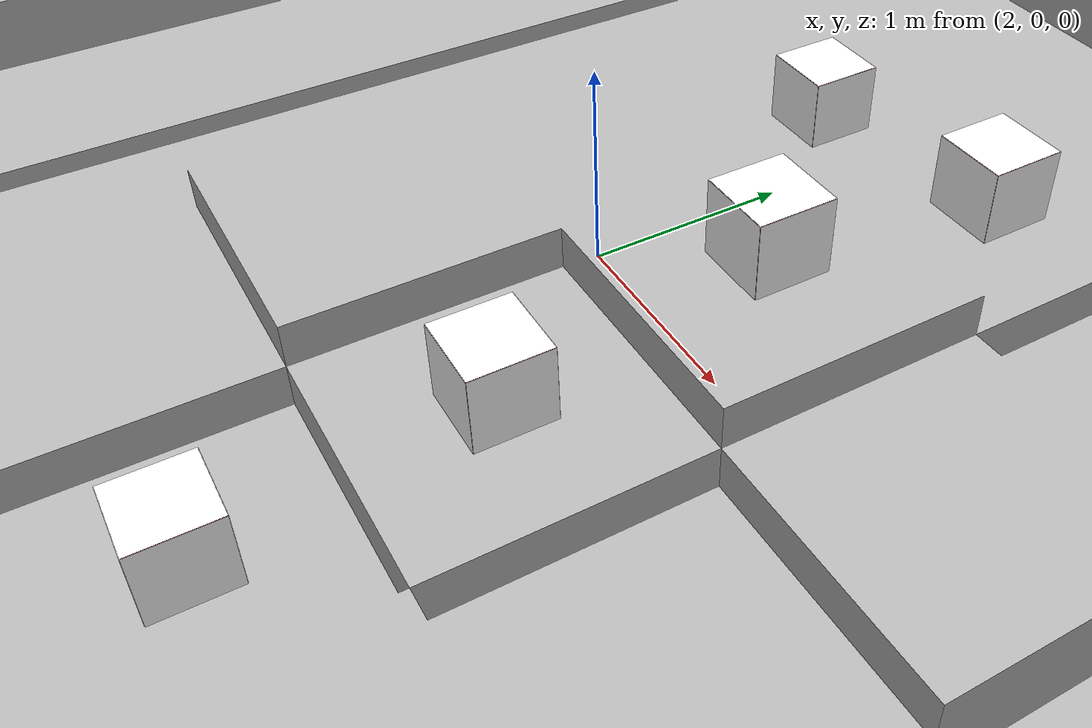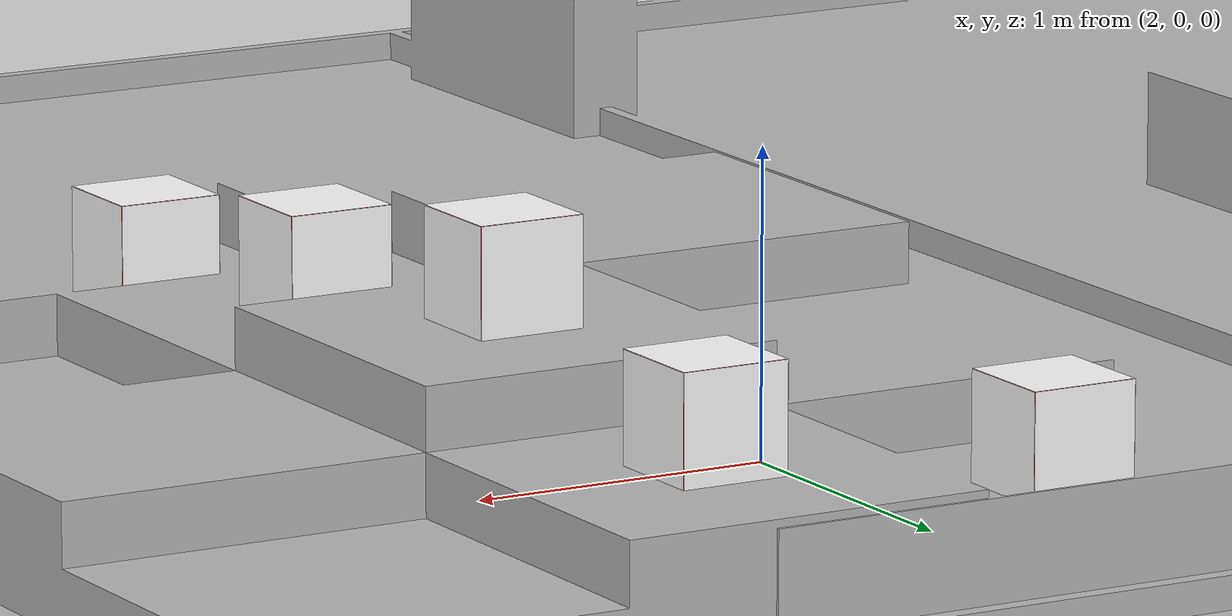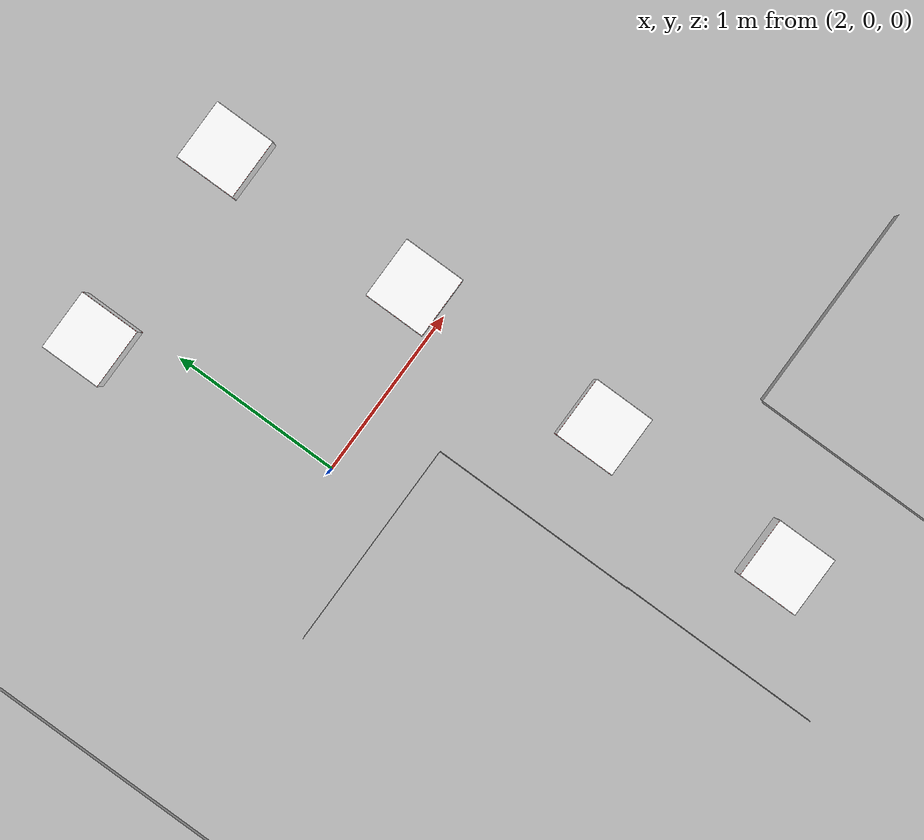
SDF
<?xml version='1.0' encoding='utf-8'?>
<sdf version="1.8">
  <world name="robocon_world">
    <plugin filename="gz-sim-sensors-system" name="gz::sim::systems::Sensors">
      <render_engine>ogre2</render_engine>
    </plugin>
    <plugin filename="gz-sim-physics-system" name="gz::sim::systems::Physics">
    </plugin>
    <plugin filename="gz-sim-user-commands-system" name="gz::sim::systems::UserCommands">
    </plugin>
    <plugin filename="gz-sim-scene-broadcaster-system" name="gz::sim::systems::SceneBroadcaster">
    </plugin>
    <plugin filename="gz-sim-imu-system" name="gz::sim::systems::Imu">
    </plugin>

    <scene>
      <ambient>0.6 0.6 0.6 1.0</ambient>
      <background>0.7 0.7 0.7 1</background>
      <shadows>true</shadows>

    </scene>
    <light type="directional" name="sun">
      <cast_shadows>true</cast_shadows>
      <pose>0 0 10 0 0 0</pose>
      <diffuse>0.8 0.8 0.8 1</diffuse>
      <specular>0.2 0.2 0.2 1</specular>
      <attenuation>
        <range>1000</range>
        <constant>0.9</constant>
        <linear>0.01</linear>
        <quadratic>0.001</quadratic>
      </attenuation>
      <direction>-0.5 0.1 -0.9</direction>
    </light>

    <model name="ground_plane">
      <static>true</static>
      <link name="link">
        <collision name="collision">
          <geometry>
            <plane>
              <normal>0 0 1</normal>
              <size>100 100</size>
            </plane>
          </geometry>
        </collision>
        <visual name="visual">
          <geometry>
            <plane>
              <normal>0 0 1</normal>
              <size>100 100</size>
            </plane>
          </geometry>
          <material>
            <ambient>0.8 0.8 0.8 1</ambient>
            <diffuse>0.8 0.8 0.8 1</diffuse>
            <specular>0.8 0.8 0.8 1</specular>
          </material>
        </visual>
      </link>
    </model>

    <model name="robocon_arena">
      <pose>0 0 0 0 0 0</pose>
      <static>true</static>
      <link name="body">
        <visual name="visual">
          <geometry>
            <mesh>
              <uri>package://robocon_description/meshes/robocon_arena.obj</uri>
              <scale>1 1 1</scale>
            </mesh>
          </geometry>
        </visual>
        <collision name="collision">
          <geometry>
            <mesh>
              <uri>package://robocon_description/meshes/robocon_arena.stl</uri>
              <scale>0.001 0.001 0.001</scale>
            </mesh>
          </geometry>
        </collision>
      </link>
    </model>

    <model name="all_kungfu_scrolls">

      <model name="kungfu_scroll_12">
        <pose>1.825 1.400 0.375 0 0 0</pose>
        <link name="link">
          <inertial>
            <mass>0.63</mass>
            <inertia>
              <ixx>0.0128</ixx><iyy>0.0128</iyy><izz>0.0128</izz>
            </inertia>
          </inertial>
          <collision name="collision">
            <geometry><box><size>0.35 0.35 0.35</size></box></geometry>
          </collision>
          <visual name="visual">
            <geometry><box><size>0.35 0.35 0.35</size></box></geometry>
            <material>
              <ambient>1.0 0.0 0.0 1.0</ambient>
              <diffuse>1.0 0.0 0.0 1.0</diffuse>
              <specular>0.2 0.2 0.2 1.0</specular>
            </material>
          </visual>

          <visual name="visual_top">
            <cast_shadows>false</cast_shadows>
            <pose>0 0 0.176 0 0 0</pose>
            <geometry><box><size>0.35 0.35 0.001</size></box></geometry>
            <material>
              <ambient>1 1 1 1</ambient><diffuse>1 1 1 1</diffuse><pbr><metal><albedo_map>file:///home/robot/robocon_ws/src/robocon_description/textures/r2/real_kfs/kfs_logo_17.png</albedo_map><roughness>0.9</roughness><metalness>0.1</metalness></metal></pbr>
            </material>
          </visual>

          <visual name="visual_front">
            <cast_shadows>false</cast_shadows>
            <pose>0.176 0 0 0 0 0</pose>
            <geometry><box><size>0.001 0.35 0.35</size></box></geometry>
            <material>
              <ambient>1 1 1 1</ambient><diffuse>1 1 1 1</diffuse><pbr><metal><albedo_map>file:///home/robot/robocon_ws/src/robocon_description/textures/r2/real_kfs/kfs_logo_17.png</albedo_map><roughness>0.9</roughness><metalness>0.1</metalness></metal></pbr>
            </material>
          </visual>

          <visual name="visual_back">
            <cast_shadows>false</cast_shadows>
            <pose>-0.176 0 0 0 0 0</pose>
            <geometry><box><size>0.001 0.35 0.35</size></box></geometry>
            <material>
              <ambient>1 1 1 1</ambient><diffuse>1 1 1 1</diffuse><pbr><metal><albedo_map>file:///home/robot/robocon_ws/src/robocon_description/textures/r2/real_kfs/kfs_logo_17.png</albedo_map><roughness>0.9</roughness><metalness>0.1</metalness></metal></pbr>
            </material>
          </visual>

          <visual name="visual_left">
            <cast_shadows>false</cast_shadows>
            <pose>0 0.176 0 0 0 0</pose>
            <geometry><box><size>0.35 0.001 0.35</size></box></geometry>
            <material>
              <ambient>1 1 1 1</ambient><diffuse>1 1 1 1</diffuse><pbr><metal><albedo_map>file:///home/robot/robocon_ws/src/robocon_description/textures/r2/real_kfs/kfs_logo_17.png</albedo_map><roughness>0.9</roughness><metalness>0.1</metalness></metal></pbr>
            </material>
          </visual>

          <visual name="visual_right">
            <cast_shadows>false</cast_shadows>
            <pose>0 -0.176 0 0 0 0</pose>
            <geometry><box><size>0.35 0.001 0.35</size></box></geometry>
            <material>
              <ambient>1 1 1 1</ambient><diffuse>1 1 1 1</diffuse><pbr><metal><albedo_map>file:///home/robot/robocon_ws/src/robocon_description/textures/r2/real_kfs/kfs_logo_17.png</albedo_map><roughness>0.9</roughness><metalness>0.1</metalness></metal></pbr>
            </material>
          </visual>
        </link>
      </model>
      <model name="kungfu_scroll_11">
        <pose>3.025 1.400 0.575 0 0 0</pose>
        <link name="link">
          <inertial>
            <mass>0.63</mass>
            <inertia>
              <ixx>0.0128</ixx><iyy>0.0128</iyy><izz>0.0128</izz>
            </inertia>
          </inertial>
          <collision name="collision">
            <geometry><box><size>0.35 0.35 0.35</size></box></geometry>
          </collision>
          <visual name="visual">
            <geometry><box><size>0.35 0.35 0.35</size></box></geometry>
            <material>
              <ambient>1.0 0.0 0.0 1.0</ambient>
              <diffuse>1.0 0.0 0.0 1.0</diffuse>
              <specular>0.2 0.2 0.2 1.0</specular>
            </material>
          </visual>

          <visual name="visual_top">
            <cast_shadows>false</cast_shadows>
            <pose>0 0 0.176 0 0 0</pose>
            <geometry><box><size>0.35 0.35 0.001</size></box></geometry>
            <material>
              <ambient>1 1 1 1</ambient><diffuse>1 1 1 1</diffuse><pbr><metal><albedo_map>file:///home/robot/robocon_ws/src/robocon_description/textures/r2/fake_kfs/kfs_logo_8.png</albedo_map><roughness>0.9</roughness><metalness>0.1</metalness></metal></pbr>
            </material>
          </visual>

          <visual name="visual_front">
            <cast_shadows>false</cast_shadows>
            <pose>0.176 0 0 0 0 0</pose>
            <geometry><box><size>0.001 0.35 0.35</size></box></geometry>
            <material>
              <ambient>1 1 1 1</ambient><diffuse>1 1 1 1</diffuse><pbr><metal><albedo_map>file:///home/robot/robocon_ws/src/robocon_description/textures/r2/fake_kfs/kfs_logo_8.png</albedo_map><roughness>0.9</roughness><metalness>0.1</metalness></metal></pbr>
            </material>
          </visual>

          <visual name="visual_back">
            <cast_shadows>false</cast_shadows>
            <pose>-0.176 0 0 0 0 0</pose>
            <geometry><box><size>0.001 0.35 0.35</size></box></geometry>
            <material>
              <ambient>1 1 1 1</ambient><diffuse>1 1 1 1</diffuse><pbr><metal><albedo_map>file:///home/robot/robocon_ws/src/robocon_description/textures/r2/fake_kfs/kfs_logo_8.png</albedo_map><roughness>0.9</roughness><metalness>0.1</metalness></metal></pbr>
            </material>
          </visual>

          <visual name="visual_left">
            <cast_shadows>false</cast_shadows>
            <pose>0 0.176 0 0 0 0</pose>
            <geometry><box><size>0.35 0.001 0.35</size></box></geometry>
            <material>
              <ambient>1 1 1 1</ambient><diffuse>1 1 1 1</diffuse><pbr><metal><albedo_map>file:///home/robot/robocon_ws/src/robocon_description/textures/r2/fake_kfs/kfs_logo_8.png</albedo_map><roughness>0.9</roughness><metalness>0.1</metalness></metal></pbr>
            </material>
          </visual>

          <visual name="visual_right">
            <cast_shadows>false</cast_shadows>
            <pose>0 -0.176 0 0 0 0</pose>
            <geometry><box><size>0.35 0.001 0.35</size></box></geometry>
            <material>
              <ambient>1 1 1 1</ambient><diffuse>1 1 1 1</diffuse><pbr><metal><albedo_map>file:///home/robot/robocon_ws/src/robocon_description/textures/r2/fake_kfs/kfs_logo_8.png</albedo_map><roughness>0.9</roughness><metalness>0.1</metalness></metal></pbr>
            </material>
          </visual>
        </link>
      </model>
      <model name="kungfu_scroll_8">
        <pose>3.025 0.200 0.775 0 0 0</pose>
        <link name="link">
          <inertial>
            <mass>0.63</mass>
            <inertia>
              <ixx>0.0128</ixx><iyy>0.0128</iyy><izz>0.0128</izz>
            </inertia>
          </inertial>
          <collision name="collision">
            <geometry><box><size>0.35 0.35 0.35</size></box></geometry>
          </collision>
          <visual name="visual">
            <geometry><box><size>0.35 0.35 0.35</size></box></geometry>
            <material>
              <ambient>1.0 0.0 0.0 1.0</ambient>
              <diffuse>1.0 0.0 0.0 1.0</diffuse>
              <specular>0.2 0.2 0.2 1.0</specular>
            </material>
          </visual>

          <visual name="visual_top">
            <cast_shadows>false</cast_shadows>
            <pose>0 0 0.176 0 0 0</pose>
            <geometry><box><size>0.35 0.35 0.001</size></box></geometry>
            <material>
              <ambient>1 1 1 1</ambient><diffuse>1 1 1 1</diffuse><pbr><metal><albedo_map>file:///home/robot/robocon_ws/src/robocon_description/textures/r2/real_kfs/kfs_logo_21.png</albedo_map><roughness>0.9</roughness><metalness>0.1</metalness></metal></pbr>
            </material>
          </visual>

          <visual name="visual_front">
            <cast_shadows>false</cast_shadows>
            <pose>0.176 0 0 0 0 0</pose>
            <geometry><box><size>0.001 0.35 0.35</size></box></geometry>
            <material>
              <ambient>1 1 1 1</ambient><diffuse>1 1 1 1</diffuse><pbr><metal><albedo_map>file:///home/robot/robocon_ws/src/robocon_description/textures/r2/real_kfs/kfs_logo_21.png</albedo_map><roughness>0.9</roughness><metalness>0.1</metalness></metal></pbr>
            </material>
          </visual>

          <visual name="visual_back">
            <cast_shadows>false</cast_shadows>
            <pose>-0.176 0 0 0 0 0</pose>
            <geometry><box><size>0.001 0.35 0.35</size></box></geometry>
            <material>
              <ambient>1 1 1 1</ambient><diffuse>1 1 1 1</diffuse><pbr><metal><albedo_map>file:///home/robot/robocon_ws/src/robocon_description/textures/r2/real_kfs/kfs_logo_21.png</albedo_map><roughness>0.9</roughness><metalness>0.1</metalness></metal></pbr>
            </material>
          </visual>

          <visual name="visual_left">
            <cast_shadows>false</cast_shadows>
            <pose>0 0.176 0 0 0 0</pose>
            <geometry><box><size>0.35 0.001 0.35</size></box></geometry>
            <material>
              <ambient>1 1 1 1</ambient><diffuse>1 1 1 1</diffuse><pbr><metal><albedo_map>file:///home/robot/robocon_ws/src/robocon_description/textures/r2/real_kfs/kfs_logo_21.png</albedo_map><roughness>0.9</roughness><metalness>0.1</metalness></metal></pbr>
            </material>
          </visual>

          <visual name="visual_right">
            <cast_shadows>false</cast_shadows>
            <pose>0 -0.176 0 0 0 0</pose>
            <geometry><box><size>0.35 0.001 0.35</size></box></geometry>
            <material>
              <ambient>1 1 1 1</ambient><diffuse>1 1 1 1</diffuse><pbr><metal><albedo_map>file:///home/robot/robocon_ws/src/robocon_description/textures/r2/real_kfs/kfs_logo_21.png</albedo_map><roughness>0.9</roughness><metalness>0.1</metalness></metal></pbr>
            </material>
          </visual>
        </link>
      </model>
      <model name="kungfu_scroll_2">
        <pose>3.000 -2.200 0.375 0 0 0</pose>
        <link name="link">
          <inertial>
            <mass>0.63</mass>
            <inertia>
              <ixx>0.0128</ixx><iyy>0.0128</iyy><izz>0.0128</izz>
            </inertia>
          </inertial>
          <collision name="collision">
            <geometry><box><size>0.35 0.35 0.35</size></box></geometry>
          </collision>
          <visual name="visual">
            <geometry><box><size>0.35 0.35 0.35</size></box></geometry>
            <material>
              <ambient>1.0 0.0 0.0 1.0</ambient>
              <diffuse>1.0 0.0 0.0 1.0</diffuse>
              <specular>0.2 0.2 0.2 1.0</specular>
            </material>
          </visual>

          <visual name="visual_top">
            <cast_shadows>false</cast_shadows>
            <pose>0 0 0.176 0 0 0</pose>
            <geometry><box><size>0.35 0.35 0.001</size></box></geometry>
            <material>
              <ambient>1 1 1 1</ambient><diffuse>1 1 1 1</diffuse><pbr><metal><albedo_map>file:///home/robot/robocon_ws/src/robocon_description/textures/r2/real_kfs/kfs_logo_29.png</albedo_map><roughness>0.9</roughness><metalness>0.1</metalness></metal></pbr>
            </material>
          </visual>

          <visual name="visual_front">
            <cast_shadows>false</cast_shadows>
            <pose>0.176 0 0 0 0 0</pose>
            <geometry><box><size>0.001 0.35 0.35</size></box></geometry>
            <material>
              <ambient>1 1 1 1</ambient><diffuse>1 1 1 1</diffuse><pbr><metal><albedo_map>file:///home/robot/robocon_ws/src/robocon_description/textures/r2/real_kfs/kfs_logo_29.png</albedo_map><roughness>0.9</roughness><metalness>0.1</metalness></metal></pbr>
            </material>
          </visual>

          <visual name="visual_back">
            <cast_shadows>false</cast_shadows>
            <pose>-0.176 0 0 0 0 0</pose>
            <geometry><box><size>0.001 0.35 0.35</size></box></geometry>
            <material>
              <ambient>1 1 1 1</ambient><diffuse>1 1 1 1</diffuse><pbr><metal><albedo_map>file:///home/robot/robocon_ws/src/robocon_description/textures/r2/real_kfs/kfs_logo_29.png</albedo_map><roughness>0.9</roughness><metalness>0.1</metalness></metal></pbr>
            </material>
          </visual>

          <visual name="visual_left">
            <cast_shadows>false</cast_shadows>
            <pose>0 0.176 0 0 0 0</pose>
            <geometry><box><size>0.35 0.001 0.35</size></box></geometry>
            <material>
              <ambient>1 1 1 1</ambient><diffuse>1 1 1 1</diffuse><pbr><metal><albedo_map>file:///home/robot/robocon_ws/src/robocon_description/textures/r2/real_kfs/kfs_logo_29.png</albedo_map><roughness>0.9</roughness><metalness>0.1</metalness></metal></pbr>
            </material>
          </visual>

          <visual name="visual_right">
            <cast_shadows>false</cast_shadows>
            <pose>0 -0.176 0 0 0 0</pose>
            <geometry><box><size>0.35 0.001 0.35</size></box></geometry>
            <material>
              <ambient>1 1 1 1</ambient><diffuse>1 1 1 1</diffuse><pbr><metal><albedo_map>file:///home/robot/robocon_ws/src/robocon_description/textures/r2/real_kfs/kfs_logo_29.png</albedo_map><roughness>0.9</roughness><metalness>0.1</metalness></metal></pbr>
            </material>
          </visual>
        </link>
      </model>
      <model name="kungfu_scroll_5">
        <pose>3.025 -1.000 0.575 0 0 0</pose>
        <link name="link">
          <inertial>
            <mass>0.63</mass>
            <inertia>
              <ixx>0.0128</ixx><iyy>0.0128</iyy><izz>0.0128</izz>
            </inertia>
          </inertial>
          <collision name="collision">
            <geometry><box><size>0.35 0.35 0.35</size></box></geometry>
          </collision>
          <visual name="visual">
            <geometry><box><size>0.35 0.35 0.35</size></box></geometry>
            <material>
              <ambient>1.0 0.0 0.0 1.0</ambient>
              <diffuse>1.0 0.0 0.0 1.0</diffuse>
              <specular>0.2 0.2 0.2 1.0</specular>
            </material>
          </visual>

          <visual name="visual_top">
            <cast_shadows>false</cast_shadows>
            <pose>0 0 0.176 0 0 0</pose>
            <geometry><box><size>0.35 0.35 0.001</size></box></geometry>
            <material>
              <ambient>1 1 1 1</ambient><diffuse>1 1 1 1</diffuse><pbr><metal><albedo_map>file:///home/robot/robocon_ws/src/robocon_description/textures/r2/real_kfs/kfs_logo_30.png</albedo_map><roughness>0.9</roughness><metalness>0.1</metalness></metal></pbr>
            </material>
          </visual>

          <visual name="visual_front">
            <cast_shadows>false</cast_shadows>
            <pose>0.176 0 0 0 0 0</pose>
            <geometry><box><size>0.001 0.35 0.35</size></box></geometry>
            <material>
              <ambient>1 1 1 1</ambient><diffuse>1 1 1 1</diffuse><pbr><metal><albedo_map>file:///home/robot/robocon_ws/src/robocon_description/textures/r2/real_kfs/kfs_logo_30.png</albedo_map><roughness>0.9</roughness><metalness>0.1</metalness></metal></pbr>
            </material>
          </visual>

          <visual name="visual_back">
            <cast_shadows>false</cast_shadows>
            <pose>-0.176 0 0 0 0 0</pose>
            <geometry><box><size>0.001 0.35 0.35</size></box></geometry>
            <material>
              <ambient>1 1 1 1</ambient><diffuse>1 1 1 1</diffuse><pbr><metal><albedo_map>file:///home/robot/robocon_ws/src/robocon_description/textures/r2/real_kfs/kfs_logo_30.png</albedo_map><roughness>0.9</roughness><metalness>0.1</metalness></metal></pbr>
            </material>
          </visual>

          <visual name="visual_left">
            <cast_shadows>false</cast_shadows>
            <pose>0 0.176 0 0 0 0</pose>
            <geometry><box><size>0.35 0.001 0.35</size></box></geometry>
            <material>
              <ambient>1 1 1 1</ambient><diffuse>1 1 1 1</diffuse><pbr><metal><albedo_map>file:///home/robot/robocon_ws/src/robocon_description/textures/r2/real_kfs/kfs_logo_30.png</albedo_map><roughness>0.9</roughness><metalness>0.1</metalness></metal></pbr>
            </material>
          </visual>

          <visual name="visual_right">
            <cast_shadows>false</cast_shadows>
            <pose>0 -0.176 0 0 0 0</pose>
            <geometry><box><size>0.35 0.001 0.35</size></box></geometry>
            <material>
              <ambient>1 1 1 1</ambient><diffuse>1 1 1 1</diffuse><pbr><metal><albedo_map>file:///home/robot/robocon_ws/src/robocon_description/textures/r2/real_kfs/kfs_logo_30.png</albedo_map><roughness>0.9</roughness><metalness>0.1</metalness></metal></pbr>
            </material>
          </visual>
        </link>
      </model>
    </model>
  </world>
</sdf>
